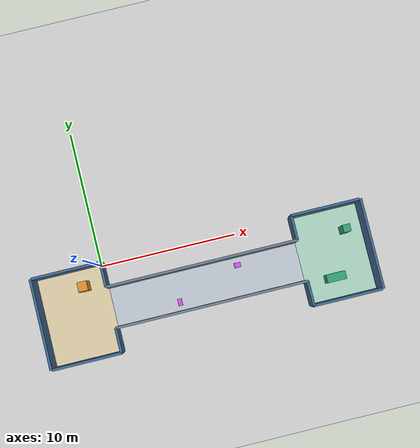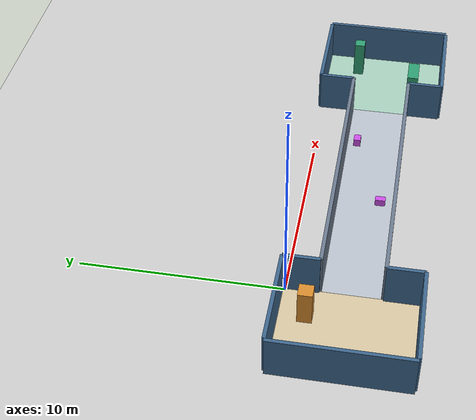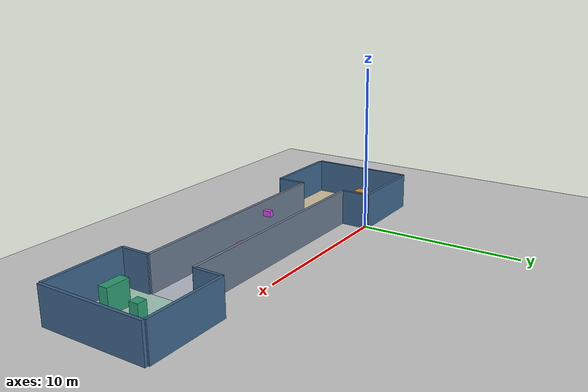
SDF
<?xml version='1.0' encoding='utf-8'?>
<sdf version="1.6">
  <world name="competition_world">
    <gravity>0 0 -9.8</gravity>
    <plugin filename="gz-sim-physics-system" name="gz::sim::systems::Physics" />
    <plugin filename="gz-sim-user-commands-system" name="gz::sim::systems::UserCommands" />
    <plugin filename="gz-sim-scene-broadcaster-system" name="gz::sim::systems::SceneBroadcaster" />
    <plugin filename="gz-sim-contact-system" name="gz::sim::systems::Contact" />
    <light name="sun" type="directional">
      <cast_shadows>true</cast_shadows>
      <pose>0 0 10 0 0 0</pose>
      <diffuse>0.8 0.8 0.8 1</diffuse>
      <specular>0.2 0.2 0.2 1</specular>
      <attenuation>
        <range>1000</range>
        <constant>0.9</constant>
        <linear>0.01</linear>
        <quadratic>0.001</quadratic>
      </attenuation>
      <direction>-0.5 0.1 -0.9</direction>
    </light>
    <model name="ground_plane">
      <static>true</static>
      <link name="link">
        <collision name="collision">
          <geometry>
            <plane>
              <normal>0 0 1</normal>
              <size>40 24</size>
            </plane>
          </geometry>
        </collision>
        <visual name="visual">
          <geometry>
            <plane>
              <normal>0 0 1</normal>
              <size>40 24</size>
            </plane>
          </geometry>
          <material>
            <ambient>0.8 0.8 0.8 1</ambient>
            <diffuse>0.8 0.8 0.8 1</diffuse>
          </material>
        </visual>
      </link>
    </model>
    <plugin filename="gz-sim-sensors-system" name="gz::sim::systems::Sensors">
      <render_engine>ogre2</render_engine>
    </plugin>
    <model name="plain_wall_north">
      <static>true</static>
      <pose>7.15 -1.6 1.1 0 0 0</pose>
      <link name="link">
        <collision name="collision">
          <geometry>
            <box>
              <size>14 0.18 2.2</size>
            </box>
          </geometry>
        </collision>
        <visual name="visual">
          <geometry>
            <box>
              <size>14 0.18 2.2</size>
            </box>
          </geometry>
          <material>
            <ambient>0.42 0.48 0.56 1</ambient>
            <diffuse>0.42 0.48 0.56 1</diffuse>
          </material>
        </visual>
      </link>
    </model>
    <model name="end_room_west_north">
      <static>true</static>
      <pose>-2.35 0.19999999999999996 1.1 0 0 0</pose>
      <link name="link">
        <collision name="collision">
          <geometry>
            <box>
              <size>5 0.18 2.2</size>
            </box>
          </geometry>
        </collision>
        <visual name="visual">
          <geometry>
            <box>
              <size>5 0.18 2.2</size>
            </box>
          </geometry>
          <material>
            <ambient>0.24 0.4 0.55 1</ambient>
            <diffuse>0.24 0.4 0.55 1</diffuse>
          </material>
        </visual>
      </link>
    </model>
    <model name="end_room_east_north">
      <static>true</static>
      <pose>16.65 0.19999999999999996 1.1 0 0 0</pose>
      <link name="link">
        <collision name="collision">
          <geometry>
            <box>
              <size>5 0.18 2.2</size>
            </box>
          </geometry>
        </collision>
        <visual name="visual">
          <geometry>
            <box>
              <size>5 0.18 2.2</size>
            </box>
          </geometry>
          <material>
            <ambient>0.24 0.4 0.55 1</ambient>
            <diffuse>0.24 0.4 0.55 1</diffuse>
          </material>
        </visual>
      </link>
    </model>
    <model name="plain_wall_south">
      <static>true</static>
      <pose>7.15 -4.6 1.1 0 0 0</pose>
      <link name="link">
        <collision name="collision">
          <geometry>
            <box>
              <size>14 0.18 2.2</size>
            </box>
          </geometry>
        </collision>
        <visual name="visual">
          <geometry>
            <box>
              <size>14 0.18 2.2</size>
            </box>
          </geometry>
          <material>
            <ambient>0.42 0.48 0.56 1</ambient>
            <diffuse>0.42 0.48 0.56 1</diffuse>
          </material>
        </visual>
      </link>
    </model>
    <model name="end_room_west_south">
      <static>true</static>
      <pose>-2.35 -6.3999999999999995 1.1 0 0 0</pose>
      <link name="link">
        <collision name="collision">
          <geometry>
            <box>
              <size>5 0.18 2.2</size>
            </box>
          </geometry>
        </collision>
        <visual name="visual">
          <geometry>
            <box>
              <size>5 0.18 2.2</size>
            </box>
          </geometry>
          <material>
            <ambient>0.24 0.4 0.55 1</ambient>
            <diffuse>0.24 0.4 0.55 1</diffuse>
          </material>
        </visual>
      </link>
    </model>
    <model name="end_room_east_south">
      <static>true</static>
      <pose>16.65 -6.3999999999999995 1.1 0 0 0</pose>
      <link name="link">
        <collision name="collision">
          <geometry>
            <box>
              <size>5 0.18 2.2</size>
            </box>
          </geometry>
        </collision>
        <visual name="visual">
          <geometry>
            <box>
              <size>5 0.18 2.2</size>
            </box>
          </geometry>
          <material>
            <ambient>0.24 0.4 0.55 1</ambient>
            <diffuse>0.24 0.4 0.55 1</diffuse>
          </material>
        </visual>
      </link>
    </model>
    <model name="end_wall_west">
      <static>true</static>
      <pose>-4.94 -3.1 1.1 0 0 0</pose>
      <link name="link">
        <collision name="collision">
          <geometry>
            <box>
              <size>0.18 6.6 2.2</size>
            </box>
          </geometry>
        </collision>
        <visual name="visual">
          <geometry>
            <box>
              <size>0.18 6.6 2.2</size>
            </box>
          </geometry>
          <material>
            <ambient>0.24 0.4 0.55 1</ambient>
            <diffuse>0.24 0.4 0.55 1</diffuse>
          </material>
        </visual>
      </link>
    </model>
    <model name="end_wall_east">
      <static>true</static>
      <pose>19.24 -3.1 1.1 0 0 0</pose>
      <link name="link">
        <collision name="collision">
          <geometry>
            <box>
              <size>0.18 6.6 2.2</size>
            </box>
          </geometry>
        </collision>
        <visual name="visual">
          <geometry>
            <box>
              <size>0.18 6.6 2.2</size>
            </box>
          </geometry>
          <material>
            <ambient>0.24 0.4 0.55 1</ambient>
            <diffuse>0.24 0.4 0.55 1</diffuse>
          </material>
        </visual>
      </link>
    </model>
    <model name="room_shoulder_west_north">
      <static>true</static>
      <pose>0.15 -0.7 1.1 0 0 0</pose>
      <link name="link">
        <collision name="collision">
          <geometry>
            <box>
              <size>0.18 1.8 2.2</size>
            </box>
          </geometry>
        </collision>
        <visual name="visual">
          <geometry>
            <box>
              <size>0.18 1.8 2.2</size>
            </box>
          </geometry>
          <material>
            <ambient>0.24 0.4 0.55 1</ambient>
            <diffuse>0.24 0.4 0.55 1</diffuse>
          </material>
        </visual>
      </link>
    </model>
    <model name="room_shoulder_west_south">
      <static>true</static>
      <pose>0.15 -5.5 1.1 0 0 0</pose>
      <link name="link">
        <collision name="collision">
          <geometry>
            <box>
              <size>0.18 1.8 2.2</size>
            </box>
          </geometry>
        </collision>
        <visual name="visual">
          <geometry>
            <box>
              <size>0.18 1.8 2.2</size>
            </box>
          </geometry>
          <material>
            <ambient>0.24 0.4 0.55 1</ambient>
            <diffuse>0.24 0.4 0.55 1</diffuse>
          </material>
        </visual>
      </link>
    </model>
    <model name="room_shoulder_east_north">
      <static>true</static>
      <pose>14.15 -0.7 1.1 0 0 0</pose>
      <link name="link">
        <collision name="collision">
          <geometry>
            <box>
              <size>0.18 1.8 2.2</size>
            </box>
          </geometry>
        </collision>
        <visual name="visual">
          <geometry>
            <box>
              <size>0.18 1.8 2.2</size>
            </box>
          </geometry>
          <material>
            <ambient>0.24 0.4 0.55 1</ambient>
            <diffuse>0.24 0.4 0.55 1</diffuse>
          </material>
        </visual>
      </link>
    </model>
    <model name="room_shoulder_east_south">
      <static>true</static>
      <pose>14.15 -5.5 1.1 0 0 0</pose>
      <link name="link">
        <collision name="collision">
          <geometry>
            <box>
              <size>0.18 1.8 2.2</size>
            </box>
          </geometry>
        </collision>
        <visual name="visual">
          <geometry>
            <box>
              <size>0.18 1.8 2.2</size>
            </box>
          </geometry>
          <material>
            <ambient>0.24 0.4 0.55 1</ambient>
            <diffuse>0.24 0.4 0.55 1</diffuse>
          </material>
        </visual>
      </link>
    </model>
    <model name="west_unique_column">
      <static>true</static>
      <pose>-1.5 -1.15 0.9 0 0 0</pose>
      <link name="link">
        <collision name="collision">
          <geometry>
            <box>
              <size>0.7 0.7 1.8</size>
            </box>
          </geometry>
        </collision>
        <visual name="visual">
          <geometry>
            <box>
              <size>0.7 0.7 1.8</size>
            </box>
          </geometry>
          <material>
            <ambient>0.85 0.55 0.18 1</ambient>
            <diffuse>0.85 0.55 0.18 1</diffuse>
          </material>
        </visual>
      </link>
    </model>
    <model name="east_unique_block">
      <static>true</static>
      <pose>16.3 -4.8 0.75 0 0 0</pose>
      <link name="link">
        <collision name="collision">
          <geometry>
            <box>
              <size>1.4 0.6 1.5</size>
            </box>
          </geometry>
        </collision>
        <visual name="visual">
          <geometry>
            <box>
              <size>1.4 0.6 1.5</size>
            </box>
          </geometry>
          <material>
            <ambient>0.18 0.62 0.45 1</ambient>
            <diffuse>0.18 0.62 0.45 1</diffuse>
          </material>
        </visual>
      </link>
    </model>
    <model name="east_unique_column">
      <static>true</static>
      <pose>17.8 -1.6 1 0 0 0</pose>
      <link name="link">
        <collision name="collision">
          <geometry>
            <box>
              <size>0.55 0.55 2</size>
            </box>
          </geometry>
        </collision>
        <visual name="visual">
          <geometry>
            <box>
              <size>0.55 0.55 2</size>
            </box>
          </geometry>
          <material>
            <ambient>0.18 0.62 0.45 1</ambient>
            <diffuse>0.18 0.62 0.45 1</diffuse>
          </material>
        </visual>
      </link>
    </model>
    <model name="plain_floor_zone">
      <static>true</static>
      <pose>7.15 -3.1 0.002 0 0 0</pose>
      <link name="link">
        <visual name="visual">
          <geometry>
            <box>
              <size>14 2.8 0.004</size>
            </box>
          </geometry>
          <material>
            <ambient>0.73 0.76 0.8 1</ambient>
            <diffuse>0.73 0.76 0.8 1</diffuse>
          </material>
        </visual>
      </link>
    </model>
    <model name="west_floor_zone">
      <static>true</static>
      <pose>-2.35 -3.1 0.002 0 0 0</pose>
      <link name="link">
        <visual name="visual">
          <geometry>
            <box>
              <size>5 6.4 0.004</size>
            </box>
          </geometry>
          <material>
            <ambient>0.84 0.78 0.64 1</ambient>
            <diffuse>0.84 0.78 0.64 1</diffuse>
          </material>
        </visual>
      </link>
    </model>
    <model name="east_floor_zone">
      <static>true</static>
      <pose>16.65 -3.1 0.002 0 0 0</pose>
      <link name="link">
        <visual name="visual">
          <geometry>
            <box>
              <size>5 6.4 0.004</size>
            </box>
          </geometry>
          <material>
            <ambient>0.65 0.81 0.74 1</ambient>
            <diffuse>0.65 0.81 0.74 1</diffuse>
          </material>
        </visual>
      </link>
    </model>
    <model name="probe_high_block_A">
      <static>true</static>
      <pose>9.6 -2.3 1.55 0 0 0</pose>
      <link name="link">
        <collision name="collision">
          <geometry>
            <box>
              <size>0.45 0.35 0.4</size>
            </box>
          </geometry>
        </collision>
        <visual name="visual">
          <geometry>
            <box>
              <size>0.45 0.35 0.4</size>
            </box>
          </geometry>
          <material>
            <ambient>0.8 0.3 0.9 1</ambient>
            <diffuse>0.8 0.3 0.9 1</diffuse>
          </material>
        </visual>
      </link>
    </model>
    <model name="probe_high_block_B">
      <static>true</static>
      <pose>5.0 -3.9 1.7 0 0 0</pose>
      <link name="link">
        <collision name="collision">
          <geometry>
            <box>
              <size>0.3 0.5 0.35</size>
            </box>
          </geometry>
        </collision>
        <visual name="visual">
          <geometry>
            <box>
              <size>0.3 0.5 0.35</size>
            </box>
          </geometry>
          <material>
            <ambient>0.8 0.3 0.9 1</ambient>
            <diffuse>0.8 0.3 0.9 1</diffuse>
          </material>
        </visual>
      </link>
    </model>
  </world>
</sdf>
